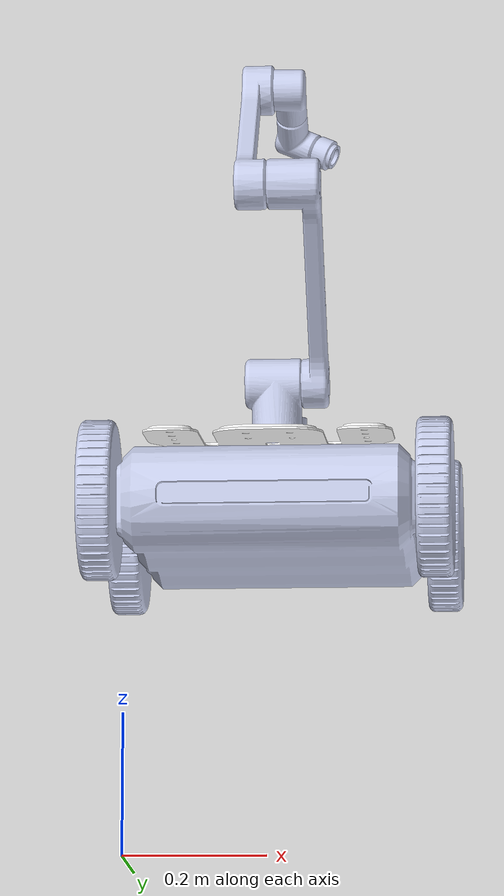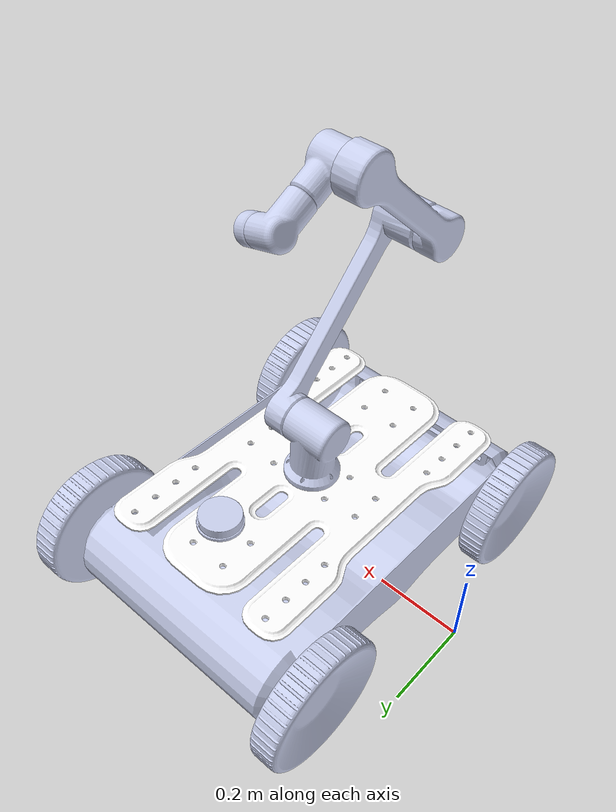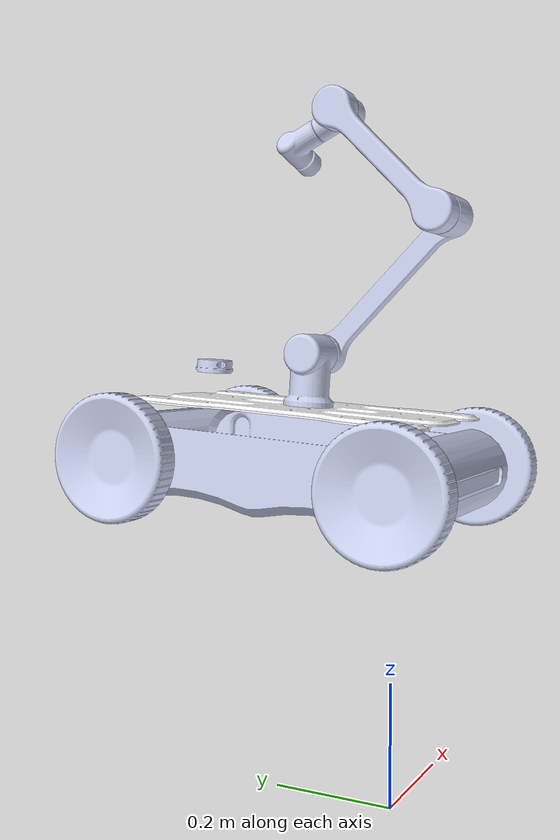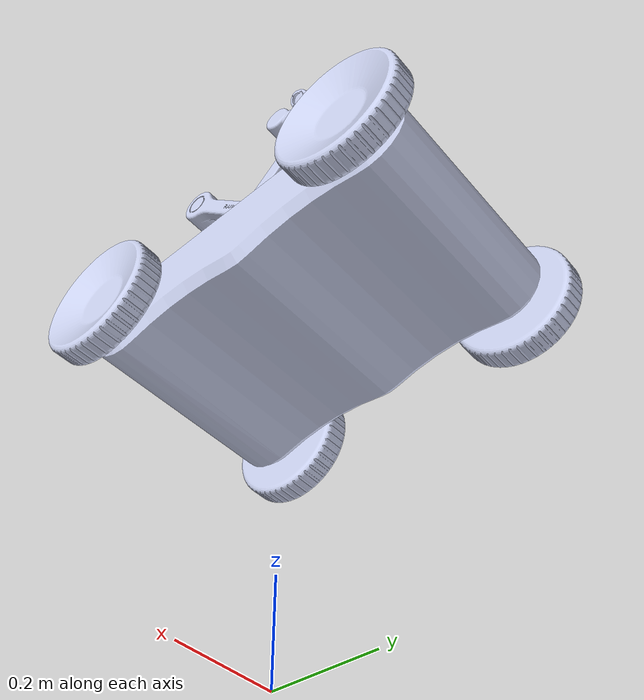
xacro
<?xml version="1.0" encoding="utf-8"?>
<robot
  name="algo6_bot">
<link name="world"/>
  <link
    name="base_link">
    <inertial>
      <origin
        xyz="0.200001512178053 0.241852211356269 -0.0225098451215039"
        rpy="0 0 0" />
      <mass
        value="1.62971419738771" />
      <inertia
        ixx="0.0827115360073378"
        ixy="9.73763421212959E-07"
        ixz="-9.00633062514957E-08"
        iyy="0.0362273244859443"
        iyz="0.000299055764514098"
        izz="0.111939320851762" />
    </inertial>
    <visual>
      <origin
        xyz="0 0 0"
        rpy="0 0 0" />
      <geometry>
        <mesh
          filename="package://algo6_bot/meshes/base_link.STL" />
      </geometry>
      <material
        name="">
        <color
          rgba="0.792156862745098 0.819607843137255 0.933333333333333 1" />
      </material>
    </visual>
    <collision>
      <origin
        xyz="0 0 0"
        rpy="0 0 0" />
      <geometry>
        <mesh
          filename="package://algo6_bot/meshes/base_link.STL" />
      </geometry>
    </collision>
  </link>
  <link
    name="front_wheelR_link">
    <inertial>
      <origin
        xyz="0.43092 5.7902E-08 2.2629E-07"
        rpy="0 0 0" />
      <mass
        value="1.5702" />
      <inertia
        ixx="0.01072"
        ixy="3.7954E-08"
        ixz="6.247E-09"
        iyy="0.0056085"
        iyz="-1.4266E-08"
        izz="0.0056083" />
    </inertial>
    <visual>
      <origin
        xyz="0 0 0"
        rpy="0 0 0" />
      <geometry>
        <mesh
          filename="package://algo6_bot/meshes/front_wheelR_link.STL" />
      </geometry>
      <material
        name="">
        <color
          rgba="0.79216 0.81961 0.93333 1" />
      </material>
    </visual>
    <collision>
      <origin
        xyz="0 0 0"
        rpy="0 0 0" />
      <geometry>
        <mesh
          filename="package://algo6_bot/meshes/front_wheelR_link.STL" />
      </geometry>
    </collision>
  </link>
  <joint
    name="front_wheelR_joint"
    type="revolute">
    <origin
      xyz="0 0 0.5"
      rpy="1.5708 0 0" />
    <parent
      link="base_link" />
    <child
      link="front_wheelR_link" />
    <axis
      xyz="0 0 0" />
    <limit
      lower="0"
      upper="0"
      effort="0"
      velocity="0" />
  </joint>
  <link
    name="front_wheelL_link">
    <inertial>
      <origin
        xyz="0.430921320844651 5.79020018598442E-08 2.26289091623892E-07"
        rpy="0 0 0" />
      <mass
        value="1.57018655061563" />
      <inertia
        ixx="0.0107199439893528"
        ixy="3.79535822746064E-08"
        ixz="6.24698917361356E-09"
        iyy="0.00560851970839014"
        iyz="-1.42662595837644E-08"
        izz="0.00560831004132884" />
    </inertial>
    <visual>
      <origin
        xyz="0 0 0"
        rpy="0 0 0" />
      <geometry>
        <mesh
          filename="package://algo6_bot/meshes/front_wheelL_link.STL" />
      </geometry>
      <material
        name="">
        <color
          rgba="0.792156862745098 0.819607843137255 0.933333333333333 1" />
      </material>
    </visual>
    <collision>
      <origin
        xyz="0 0 0"
        rpy="0 0 0" />
      <geometry>
        <mesh
          filename="package://algo6_bot/meshes/front_wheelL_link.STL" />
      </geometry>
    </collision>
  </link>
  <joint
    name="front_wheelL_joint"
    type="revolute">
    <origin
      xyz="0.4 0 0.5"
      rpy="1.5708 0 -3.1416" />
    <parent
      link="base_link" />
    <child
      link="front_wheelL_link" />
    <axis
      xyz="0 0 0" />
    <limit
      lower="0"
      upper="0"
      effort="0"
      velocity="0" />
  </joint>
  <link
    name="back_wheelR_link">
    <inertial>
      <origin
        xyz="0.430921320886506 5.79020216028264E-08 2.2513866549201E-07"
        rpy="0 0 0" />
      <mass
        value="1.57018656673181" />
      <inertia
        ixx="0.0107199441880378"
        ixy="3.79702776290324E-08"
        ixz="6.25435598561781E-09"
        iyy="0.00560851992090271"
        iyz="-1.42662598964045E-08"
        izz="0.00560831005920041" />
    </inertial>
    <visual>
      <origin
        xyz="0 0 0"
        rpy="0 0 0" />
      <geometry>
        <mesh
          filename="package://algo6_bot/meshes/back_wheelR_link.STL" />
      </geometry>
      <material
        name="">
        <color
          rgba="0.792156862745098 0.819607843137255 0.933333333333333 1" />
      </material>
    </visual>
    <collision>
      <origin
        xyz="0 0 0"
        rpy="0 0 0" />
      <geometry>
        <mesh
          filename="package://algo6_bot/meshes/back_wheelR_link.STL" />
      </geometry>
    </collision>
  </link>
  <joint
    name="back_wheelR_joint"
    type="revolute">
    <origin
      xyz="0 0 0"
      rpy="1.228 0 0" />
    <parent
      link="base_link" />
    <child
      link="back_wheelR_link" />
    <axis
      xyz="0 0 0" />
    <limit
      lower="0"
      upper="0"
      effort="0"
      velocity="0" />
  </joint>
  <link
    name="back_wheelL_link">
    <inertial>
      <origin
        xyz="0.430921320844651 5.7902019392184E-08 2.26289091397043E-07"
        rpy="0 0 0" />
      <mass
        value="1.57018655061564" />
      <inertia
        ixx="0.0107199439893528"
        ixy="3.79535822722803E-08"
        ixz="6.24698917663655E-09"
        iyy="0.00560851970839018"
        iyz="-1.42662596040544E-08"
        izz="0.00560831004132886" />
    </inertial>
    <visual>
      <origin
        xyz="0 0 0"
        rpy="0 0 0" />
      <geometry>
        <mesh
          filename="package://algo6_bot/meshes/back_wheelL_link.STL" />
      </geometry>
      <material
        name="">
        <color
          rgba="0.792156862745098 0.819607843137255 0.933333333333333 1" />
      </material>
    </visual>
    <collision>
      <origin
        xyz="0 0 0"
        rpy="0 0 0" />
      <geometry>
        <mesh
          filename="package://algo6_bot/meshes/back_wheelL_link.STL" />
      </geometry>
    </collision>
  </link>
  <joint
    name="back_wheelL_joint"
    type="revolute">
    <origin
      xyz="0.4 0 0"
      rpy="-1.5708 0 3.1416" />
    <parent
      link="base_link" />
    <child
      link="back_wheelL_link" />
    <axis
      xyz="0 0 0" />
    <limit
      lower="0"
      upper="0"
      effort="0"
      velocity="0" />
  </joint>
  <link
    name="platform_link">
    <inertial>
      <origin
        xyz="0 0 0"
        rpy="0 0 0" />
      <mass
        value="0" />
      <inertia
        ixx="0"
        ixy="0"
        ixz="0"
        iyy="0"
        iyz="0"
        izz="0" />
    </inertial>
    <visual>
      <origin
        xyz="0 0 0"
        rpy="0 0 0" />
      <geometry>
        <mesh
          filename="package://algo6_bot/meshes/platform_link.STL" />
      </geometry>
      <material
        name="">
        <color
          rgba="1 1 1 1" />
      </material>
    </visual>
    <collision>
      <origin
        xyz="0 0 0"
        rpy="0 0 0" />
      <geometry>
        <mesh
          filename="package://algo6_bot/meshes/platform_link.STL" />
      </geometry>
    </collision>
  </link>
  <joint
    name="platform_joint"
    type="fixed">
    <origin
      xyz="0 -0.02 0"
      rpy="1.5708 0 0" />
    <parent
      link="base_link" />
    <child
      link="platform_link" />
    <axis
      xyz="0 0 0" />
  </joint>
  <link
    name="lidar_link">
    <inertial>
      <origin
        xyz="-1.44311769415262E-05 -3.95733034478929E-05 0.225986579401347"
        rpy="0 0 0" />
      <mass
        value="0.0626087319921524" />
      <inertia
        ixx="1.73287909876757E-05"
        ixy="1.11976874535981E-06"
        ixz="-2.85418842077003E-10"
        iyy="1.85076730925539E-05"
        iyz="-8.49249735471805E-10"
        izz="3.10067655835034E-05" />
    </inertial>
    <visual>
      <origin
        xyz="0 0 0"
        rpy="0 0 0" />
      <geometry>
        <mesh
          filename="package://algo6_bot/meshes/lidar_link.STL" />
      </geometry>
      <material
        name="">
        <color
          rgba="0.792156862745098 0.819607843137255 0.933333333333333 1" />
      </material>
    </visual>
    <collision>
      <origin
        xyz="0 0 0"
        rpy="0 0 0" />
      <geometry>
        <mesh
          filename="package://algo6_bot/meshes/lidar_link.STL" />
      </geometry>
    </collision>
  </link>
  <joint
    name="lidar_joint"
    type="fixed">
    <origin
      xyz="0.2 0.451 -0.085"
      rpy="0 0 3.1416" />
    <parent
      link="platform_link" />
    <child
      link="lidar_link" />
    <axis
      xyz="0 0 0" />
  </joint>
  <link
    name="robot_arm_base_link">
    <inertial>
      <origin
        xyz="-0.032307829842947 -0.0782281348686356 0.198084927755953"
        rpy="0 0 0" />
      <mass
        value="0.647775516079259" />
      <inertia
        ixx="0.00123935539869003"
        ixy="1.10931426285115E-08"
        ixz="-6.46709576300254E-09"
        iyy="0.00108876898407285"
        iyz="1.24433249926633E-05"
        izz="0.00059753096939592" />
    </inertial>
    <visual>
      <origin
        xyz="0 0 0"
        rpy="0 0 0" />
      <geometry>
        <mesh
          filename="package://algo6_bot/meshes/robot_arm_base_link.STL" />
      </geometry>
      <material
        name="">
        <color
          rgba="0.792156862745098 0.819607843137255 0.933333333333333 1" />
      </material>
    </visual>
    <collision>
      <origin
        xyz="0 0 0"
        rpy="0 0 0" />
      <geometry>
        <mesh
          filename="package://algo6_bot/meshes/robot_arm_base_link.STL" />
      </geometry>
    </collision>
  </link>
  <joint
    name="robot_arm_base_joint"
    type="fixed">
    <origin
      xyz="0.12246 0.28231 -0.05"
      rpy="0 0 1.5708" />
    <parent
      link="platform_link" />
    <child
      link="robot_arm_base_link" />
    <axis
      xyz="0 0 0" />
  </joint>
  <link
    name="robot_arm_link1">
    <inertial>
      <origin
        xyz="-0.152990690369013 -0.130949758510278 0.230331223634345"
        rpy="0 0 0" />
      <mass
        value="0.573239091567049" />
      <inertia
        ixx="0.000341763950181962"
        ixy="0.000527229762397376"
        ixz="-1.00040919870657E-08"
        iyy="0.0106532118617114"
        iyz="1.34984900371454E-09"
        izz="0.0106789128711268" />
    </inertial>
    <visual>
      <origin
        xyz="0 0 0"
        rpy="0 0 0" />
      <geometry>
        <mesh
          filename="package://algo6_bot/meshes/robot_arm_link1.STL" />
      </geometry>
      <material
        name="">
        <color
          rgba="0.792156862745098 0.819607843137255 0.933333333333333 1" />
      </material>
    </visual>
    <collision>
      <origin
        xyz="0 0 0"
        rpy="0 0 0" />
      <geometry>
        <mesh
          filename="package://algo6_bot/meshes/robot_arm_link1.STL" />
      </geometry>
    </collision>
  </link>
  <joint
    name="robot_arm_link1_joint"
    type="revolute">
    <origin
      xyz="-0.2331 0 0.10564"
      rpy="0 0.851 0" />
    <parent
      link="robot_arm_base_link" />
    <child
      link="robot_arm_link1" />
    <axis
      xyz="0 0 0" />
    <limit
      lower="0"
      upper="0"
      effort="0"
      velocity="0" />
  </joint>
  <link
    name="robot_arm_link2">
    <inertial>
      <origin
        xyz="-1.10280193052099 -0.05999538346491 -0.518612577309713"
        rpy="0 0 0" />
      <mass
        value="0.599895947397101" />
      <inertia
        ixx="0.000502604552655828"
        ixy="-0.000606376669837302"
        ixz="2.01562179111823E-07"
        iyy="0.00742460590373101"
        iyz="2.59824548473619E-08"
        izz="0.00763699028242569" />
    </inertial>
    <visual>
      <origin
        xyz="0 0 0"
        rpy="0 0 0" />
      <geometry>
        <mesh
          filename="package://algo6_bot/meshes/robot_arm_link2.STL" />
      </geometry>
      <material
        name="">
        <color
          rgba="0.792156862745098 0.819607843137255 0.933333333333333 1" />
      </material>
    </visual>
    <collision>
      <origin
        xyz="0 0 0"
        rpy="0 0 0" />
      <geometry>
        <mesh
          filename="package://algo6_bot/meshes/robot_arm_link2.STL" />
      </geometry>
    </collision>
  </link>
  <joint
    name="robot_arm_link2_joint"
    type="revolute">
    <origin
      xyz="-0.81392 0 1.4339"
      rpy="-0.17027 -1.5708 0.1713" />
    <parent
      link="robot_arm_link1" />
    <child
      link="robot_arm_link2" />
    <axis
      xyz="0 0 0" />
    <limit
      lower="0"
      upper="0"
      effort="0"
      velocity="0" />
  </joint>
  <link
    name="robot_arm_link3">
    <inertial>
      <origin
        xyz="0.829667891947315 -0.0931815081581417 2.29119222919717"
        rpy="0 0 0" />
      <mass
        value="0.231316775852319" />
      <inertia
        ixx="0.00022997720676195"
        ixy="6.72354827063439E-11"
        ixz="1.2756844953421E-10"
        iyy="0.000191660644842524"
        iyz="2.12181011880653E-05"
        izz="0.000119127278624079" />
    </inertial>
    <visual>
      <origin
        xyz="0 0 0"
        rpy="0 0 0" />
      <geometry>
        <mesh
          filename="package://algo6_bot/meshes/robot_arm_link3.STL" />
      </geometry>
      <material
        name="">
        <color
          rgba="0.792156862745098 0.819607843137255 0.933333333333333 1" />
      </material>
    </visual>
    <collision>
      <origin
        xyz="0 0 0"
        rpy="0 0 0" />
      <geometry>
        <mesh
          filename="package://algo6_bot/meshes/robot_arm_link3.STL" />
      </geometry>
    </collision>
  </link>
  <joint
    name="robot_arm_link3_joint"
    type="revolute">
    <origin
      xyz="-0.92471 0 1.9056"
      rpy="3.1416 0.34202 3.1416" />
    <parent
      link="robot_arm_link2" />
    <child
      link="robot_arm_link3" />
    <axis
      xyz="0 0 0" />
    <limit
      lower="0"
      upper="0"
      effort="0"
      velocity="0" />
  </joint>
  <link
    name="robot_arm_link4">
    <inertial>
      <origin
        xyz="0.0748615885982825 -0.526342838036394 2.76056312212884"
        rpy="0 0 0" />
      <mass
        value="0.155314854617675" />
      <inertia
        ixx="9.7408494664753E-05"
        ixy="-9.93658607956175E-06"
        ixz="1.8038140532317E-05"
        iyy="7.65614151543568E-05"
        iyz="1.11582318166315E-05"
        izz="9.32328235093548E-05" />
    </inertial>
    <visual>
      <origin
        xyz="0 0 0"
        rpy="0 0 0" />
      <geometry>
        <mesh
          filename="package://algo6_bot/meshes/robot_arm_link4.STL" />
      </geometry>
      <material
        name="">
        <color
          rgba="0.792156862745098 0.819607843137255 0.933333333333333 1" />
      </material>
    </visual>
    <collision>
      <origin
        xyz="0 0 0"
        rpy="0 0 0" />
      <geometry>
        <mesh
          filename="package://algo6_bot/meshes/robot_arm_link4.STL" />
      </geometry>
    </collision>
  </link>
  <joint
    name="robot_arm_link4_joint"
    type="revolute">
    <origin
      xyz="-1.0917 -0.49582 0.37304"
      rpy="0 0.7278 0.46994" />
    <parent
      link="robot_arm_link3" />
    <child
      link="robot_arm_link4" />
    <axis
      xyz="0 0 0" />
    <limit
      lower="0"
      upper="0"
      effort="0"
      velocity="0" />
  </joint>
  <link
    name="End_effector_link">
    <inertial>
      <origin
        xyz="-0.236189626357559 -0.0989956688234041 0.671666792539085"
        rpy="0 0 0" />
      <mass
        value="0.0251557542631449" />
      <inertia
        ixx="5.1902537461543E-06"
        ixy="5.11669125379852E-07"
        ixz="2.44548653157685E-07"
        iyy="7.01172848209814E-06"
        iyz="9.34436430016979E-07"
        izz="5.50295987865364E-06" />
    </inertial>
    <visual>
      <origin
        xyz="0 0 0"
        rpy="0 0 0" />
      <geometry>
        <mesh
          filename="package://algo6_bot/meshes/End_effector_link.STL" />
      </geometry>
      <material
        name="">
        <color
          rgba="0.792156862745098 0.819607843137255 0.933333333333333 1" />
      </material>
    </visual>
    <collision>
      <origin
        xyz="0 0 0"
        rpy="0 0 0" />
      <geometry>
        <mesh
          filename="package://algo6_bot/meshes/End_effector_link.STL" />
      </geometry>
    </collision>
  </link>
  <joint
    name="End_effector_link_joint"
    type="revolute">
    <origin
      xyz="-0.16652 -0.71205 3.4332"
      rpy="2.7103 -0.06143 2.9093" />
    <parent
      link="robot_arm_link4" />
    <child
      link="End_effector_link" />
    <axis
      xyz="0 0 0" />
    <limit
      lower="0"
      upper="0"
      effort="0"
      velocity="0" />
  </joint>

<joint name="world_base" type="fixed">

	 <origin
      xyz="0 0 0.5"
      rpy="-1.5 0 0" />

	<parent link="world"/>
	<child link="base_link"/>

	<axis
      xyz="0 1 0" />
</joint>
</robot>
